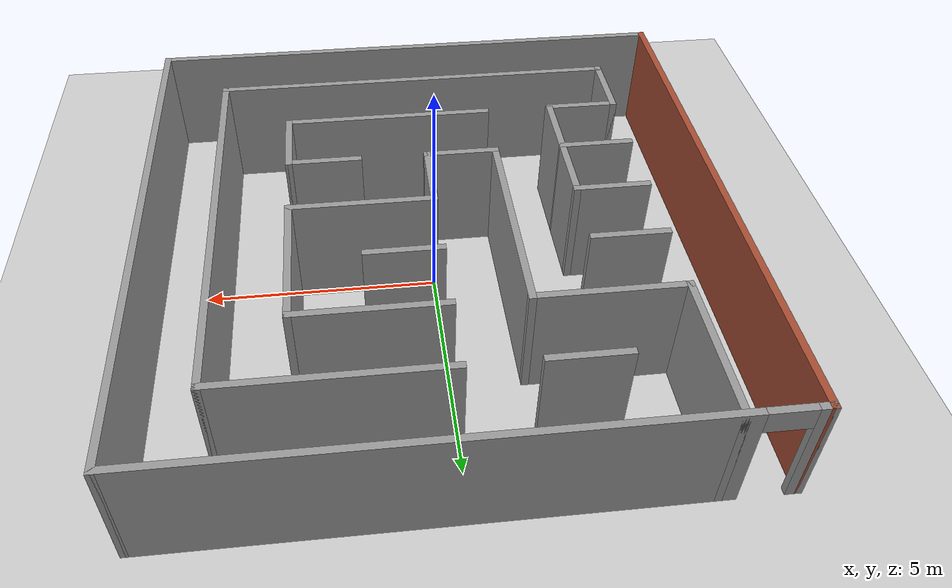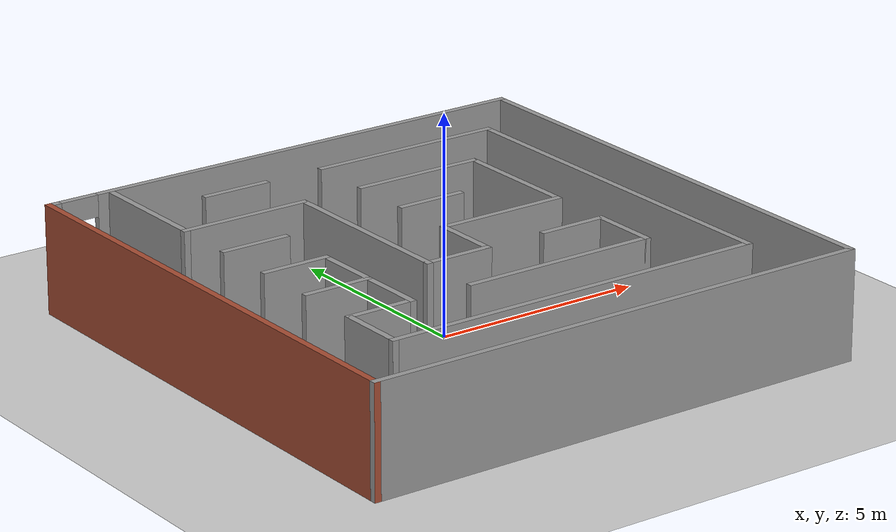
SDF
<?xml version="1.0" ?>
<sdf version="1.5">
  <world name="default">
    <!-- A global light source -->
    <include>
      <uri>model://sun</uri>
    </include>

    <!-- A ground plane -->
    <include>
      <uri>model://ground_plane</uri>
    </include>

    <!-- A maze -->
    <include>
      <uri>model://maze12_1</uri>
      <name>maze1</name>
      <pose>0 0 0 0 0 0</pose>
    </include>

  </world>
</sdf>

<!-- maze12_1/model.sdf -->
<sdf version='1.6'>
  <model name='maze12_1'>
    <pose frame=''>0 0 0 0 -0 0</pose>
    <link name='Wall_0'>
      <collision name='Wall_0_Collision'>
        <geometry>
          <box>
            <size>12.15 0.15 2.5</size>
          </box>
        </geometry>
        <pose frame=''>0 0 1.25 0 -0 0</pose>
      </collision>
      <visual name='Wall_0_Visual'>
        <pose frame=''>0 0 1.25 0 -0 0</pose>
        <geometry>
          <box>
            <size>12.15 0.15 2.5</size>
          </box>
        </geometry>
        <material>
          <script>
            <uri>model://maze12_1/materials/scripts</uri>
            <uri>model://maze12_1/materials/textures</uri>
            <name>BricksTest</name>
          </script>
          <ambient>1 1 1 1</ambient>
        </material>
      </visual>
      <pose frame=''>-6 0 0 0 -0 1.5708</pose>
    </link>
    <link name='Wall_1'>
      <pose frame=''>0 6 0 0 -0 0</pose>
      <visual name='Wall_1_Visual_0'>
        <pose frame=''>-5.9077 0 1.25 0 -0 0</pose>
        <geometry>
          <box>
            <size>0.334593 0.15 2.5</size>
          </box>
        </geometry>
        <material>
          <script>
            <uri>file://media/materials/scripts/gazebo.material</uri>
            <name>Gazebo/Grey</name>
          </script>
          <ambient>1 1 1 1</ambient>
        </material>
      </visual>
      <collision name='Wall_1_Collision_0'>
        <geometry>
          <box>
            <size>0.334593 0.15 2.5</size>
          </box>
        </geometry>
        <pose frame=''>-5.9077 0 1.25 0 -0 0</pose>
      </collision>
      <visual name='Wall_1_Visual_1'>
        <pose frame=''>0.617297 0 1.25 0 -0 0</pose>
        <geometry>
          <box>
            <size>10.9154 0.15 2.5</size>
          </box>
        </geometry>
        <material>
          <script>
            <uri>file://media/materials/scripts/gazebo.material</uri>
            <name>Gazebo/Grey</name>
          </script>
          <ambient>1 1 1 1</ambient>
        </material>
      </visual>
      <collision name='Wall_1_Collision_1'>
        <geometry>
          <box>
            <size>10.9154 0.15 2.5</size>
          </box>
        </geometry>
        <pose frame=''>0.617297 0 1.25 0 -0 0</pose>
      </collision>
      <visual name='Wall_1_Visual_2'>
        <pose frame=''>-5.29041 0 2.25 0 -0 0</pose>
        <geometry>
          <box>
            <size>0.9 0.15 0.5</size>
          </box>
        </geometry>
        <material>
          <script>
            <uri>file://media/materials/scripts/gazebo.material</uri>
            <name>Gazebo/Grey</name>
          </script>
          <ambient>1 1 1 1</ambient>
        </material>
      </visual>
      <collision name='Wall_1_Collision_2'>
        <geometry>
          <box>
            <size>0.9 0.15 0.5</size>
          </box>
        </geometry>
        <pose frame=''>-5.29041 0 2.25 0 -0 0</pose>
      </collision>
    </link>
    <link name='Wall_2'>
      <collision name='Wall_2_Collision'>
        <geometry>
          <box>
            <size>12.15 0.15 2.5</size>
          </box>
        </geometry>
        <pose frame=''>0 0 1.25 0 -0 0</pose>
      </collision>
      <visual name='Wall_2_Visual'>
        <pose frame=''>0 0 1.25 0 -0 0</pose>
        <geometry>
          <box>
            <size>12.15 0.15 2.5</size>
          </box>
        </geometry>
        <material>
          <script>
            <uri>file://media/materials/scripts/gazebo.material</uri>
            <name>Gazebo/Grey</name>
          </script>
          <ambient>1 1 1 1</ambient>
        </material>
      </visual>
      <pose frame=''>6 0 0 0 0 -1.5708</pose>
    </link>
    <link name='Wall_26'>
      <collision name='Wall_26_Collision'>
        <geometry>
          <box>
            <size>3.15 0.15 2.5</size>
          </box>
        </geometry>
        <pose frame=''>0 0 1.25 0 -0 0</pose>
      </collision>
      <visual name='Wall_26_Visual'>
        <pose frame=''>0 0 1.25 0 -0 0</pose>
        <geometry>
          <box>
            <size>3.15 0.15 2.5</size>
          </box>
        </geometry>
        <material>
          <script>
            <uri>file://media/materials/scripts/gazebo.material</uri>
            <name>Gazebo/Grey</name>
          </script>
          <ambient>1 1 1 1</ambient>
        </material>
      </visual>
      <pose frame=''>1.5 0 0 0 -0 0</pose>
    </link>
    <link name='Wall_27'>
      <collision name='Wall_27_Collision'>
        <geometry>
          <box>
            <size>3.15 0.15 2.5</size>
          </box>
        </geometry>
        <pose frame=''>0 0 1.25 0 -0 0</pose>
      </collision>
      <visual name='Wall_27_Visual'>
        <pose frame=''>0 0 1.25 0 -0 0</pose>
        <geometry>
          <box>
            <size>3.15 0.15 2.5</size>
          </box>
        </geometry>
        <material>
          <script>
            <uri>file://media/materials/scripts/gazebo.material</uri>
            <name>Gazebo/Grey</name>
          </script>
          <ambient>1 1 1 1</ambient>
        </material>
      </visual>
      <pose frame=''>3 1.5 0 0 -0 1.5708</pose>
    </link>
    <link name='Wall_28'>
      <collision name='Wall_28_Collision'>
        <geometry>
          <box>
            <size>3.15 0.15 2.5</size>
          </box>
        </geometry>
        <pose frame=''>0 0 1.25 0 -0 0</pose>
      </collision>
      <visual name='Wall_28_Visual'>
        <pose frame=''>0 0 1.25 0 -0 0</pose>
        <geometry>
          <box>
            <size>3.15 0.15 2.5</size>
          </box>
        </geometry>
        <material>
          <script>
            <uri>file://media/materials/scripts/gazebo.material</uri>
            <name>Gazebo/Grey</name>
          </script>
          <ambient>1 1 1 1</ambient>
        </material>
      </visual>
      <pose frame=''>1.5 3 0 0 -0 3.14159</pose>
    </link>
    <link name='Wall_3'>
      <collision name='Wall_3_Collision'>
        <geometry>
          <box>
            <size>12.15 0.15 2.5</size>
          </box>
        </geometry>
        <pose frame=''>0 0 1.25 0 -0 0</pose>
      </collision>
      <visual name='Wall_3_Visual'>
        <pose frame=''>0 0 1.25 0 -0 0</pose>
        <geometry>
          <box>
            <size>12.15 0.15 2.5</size>
          </box>
        </geometry>
        <material>
          <script>
            <uri>file://media/materials/scripts/gazebo.material</uri>
            <name>Gazebo/Grey</name>
          </script>
          <ambient>1 1 1 1</ambient>
        </material>
      </visual>
      <pose frame=''>0 -6 0 0 -0 3.14159</pose>
    </link>
    <link name='Wall_30'>
      <collision name='Wall_30_Collision'>
        <geometry>
          <box>
            <size>4.65 0.15 2.5</size>
          </box>
        </geometry>
        <pose frame=''>0 0 1.25 0 -0 0</pose>
      </collision>
      <visual name='Wall_30_Visual'>
        <pose frame=''>0 0 1.25 0 -0 0</pose>
        <geometry>
          <box>
            <size>4.65 0.15 2.5</size>
          </box>
        </geometry>
        <material>
          <script>
            <uri>file://media/materials/scripts/gazebo.material</uri>
            <name>Gazebo/Grey</name>
          </script>
          <ambient>1 1 1 1</ambient>
        </material>
      </visual>
      <pose frame=''>2.25 4.5 0 0 -0 0</pose>
    </link>
    <link name='Wall_31'>
      <collision name='Wall_31_Collision'>
        <geometry>
          <box>
            <size>9.15 0.15 2.5</size>
          </box>
        </geometry>
        <pose frame=''>0 0 1.25 0 -0 0</pose>
      </collision>
      <visual name='Wall_31_Visual'>
        <pose frame=''>0 0 1.25 0 -0 0</pose>
        <geometry>
          <box>
            <size>9.15 0.15 2.5</size>
          </box>
        </geometry>
        <material>
          <script>
            <uri>file://media/materials/scripts/gazebo.material</uri>
            <name>Gazebo/Grey</name>
          </script>
          <ambient>1 1 1 1</ambient>
        </material>
      </visual>
      <pose frame=''>4.5 0 0 0 0 -1.5708</pose>
    </link>
    <link name='Wall_32'>
      <collision name='Wall_32_Collision'>
        <geometry>
          <box>
            <size>9.15 0.15 2.5</size>
          </box>
        </geometry>
        <pose frame=''>0 0 1.25 0 -0 0</pose>
      </collision>
      <visual name='Wall_32_Visual'>
        <pose frame=''>0 0 1.25 0 -0 0</pose>
        <geometry>
          <box>
            <size>9.15 0.15 2.5</size>
          </box>
        </geometry>
        <material>
          <script>
            <uri>file://media/materials/scripts/gazebo.material</uri>
            <name>Gazebo/Grey</name>
          </script>
          <ambient>1 1 1 1</ambient>
        </material>
      </visual>
      <pose frame=''>0 -4.5 0 0 -0 3.14159</pose>
    </link>
    <link name='Wall_33'>
      <collision name='Wall_33_Collision'>
        <geometry>
          <box>
            <size>1.65 0.15 2.5</size>
          </box>
        </geometry>
        <pose frame=''>0 0 1.25 0 -0 0</pose>
      </collision>
      <visual name='Wall_33_Visual'>
        <pose frame=''>0 0 1.25 0 -0 0</pose>
        <geometry>
          <box>
            <size>1.65 0.15 2.5</size>
          </box>
        </geometry>
        <material>
          <script>
            <uri>file://media/materials/scripts/gazebo.material</uri>
            <name>Gazebo/Grey</name>
          </script>
          <ambient>1 1 1 1</ambient>
        </material>
      </visual>
      <pose frame=''>-4.5 -3.75 0 0 -0 1.5708</pose>
    </link>
    <link name='Wall_34'>
      <collision name='Wall_34_Collision'>
        <geometry>
          <box>
            <size>1.65 0.15 2.5</size>
          </box>
        </geometry>
        <pose frame=''>0 0 1.25 0 -0 0</pose>
      </collision>
      <visual name='Wall_34_Visual'>
        <pose frame=''>0 0 1.25 0 -0 0</pose>
        <geometry>
          <box>
            <size>1.65 0.15 2.5</size>
          </box>
        </geometry>
        <material>
          <script>
            <uri>file://media/materials/scripts/gazebo.material</uri>
            <name>Gazebo/Grey</name>
          </script>
          <ambient>1 1 1 1</ambient>
        </material>
      </visual>
      <pose frame=''>-3.75 -3 0 0 -0 0</pose>
    </link>
    <link name='Wall_35'>
      <collision name='Wall_35_Collision'>
        <geometry>
          <box>
            <size>3.15 0.15 2.5</size>
          </box>
        </geometry>
        <pose frame=''>0 0 1.25 0 -0 0</pose>
      </collision>
      <visual name='Wall_35_Visual'>
        <pose frame=''>0 0 1.25 0 -0 0</pose>
        <geometry>
          <box>
            <size>3.15 0.15 2.5</size>
          </box>
        </geometry>
        <material>
          <script>
            <uri>file://media/materials/scripts/gazebo.material</uri>
            <name>Gazebo/Grey</name>
          </script>
          <ambient>1 1 1 1</ambient>
        </material>
      </visual>
      <pose frame=''>-3 -1.5 0 0 -0 1.5708</pose>
    </link>
    <link name='Wall_38'>
      <collision name='Wall_38_Collision'>
        <geometry>
          <box>
            <size>1.65 0.15 2.5</size>
          </box>
        </geometry>
        <pose frame=''>0 0 1.25 0 -0 0</pose>
      </collision>
      <visual name='Wall_38_Visual'>
        <pose frame=''>0 0 1.25 0 -0 0</pose>
        <geometry>
          <box>
            <size>1.65 0.15 2.5</size>
          </box>
        </geometry>
        <material>
          <script>
            <uri>file://media/materials/scripts/gazebo.material</uri>
            <name>Gazebo/Grey</name>
          </script>
          <ambient>1 1 1 1</ambient>
        </material>
      </visual>
      <pose frame=''>0 -0.75 0 0 0 -1.5708</pose>
    </link>
    <link name='Wall_39'>
      <collision name='Wall_39_Collision'>
        <geometry>
          <box>
            <size>1.65 0.15 2.5</size>
          </box>
        </geometry>
        <pose frame=''>0 0 1.25 0 -0 0</pose>
      </collision>
      <visual name='Wall_39_Visual'>
        <pose frame=''>0 0 1.25 0 -0 0</pose>
        <geometry>
          <box>
            <size>1.65 0.15 2.5</size>
          </box>
        </geometry>
        <material>
          <script>
            <uri>file://media/materials/scripts/gazebo.material</uri>
            <name>Gazebo/Grey</name>
          </script>
          <ambient>1 1 1 1</ambient>
        </material>
      </visual>
      <pose frame=''>-0.75 -1.5 0 0 -0 3.14159</pose>
    </link>
    <link name='Wall_40'>
      <collision name='Wall_40_Collision'>
        <geometry>
          <box>
            <size>4.65 0.15 2.5</size>
          </box>
        </geometry>
        <pose frame=''>0 0 1.25 0 -0 0</pose>
      </collision>
      <visual name='Wall_40_Visual'>
        <pose frame=''>0 0 1.25 0 -0 0</pose>
        <geometry>
          <box>
            <size>4.65 0.15 2.5</size>
          </box>
        </geometry>
        <material>
          <script>
            <uri>file://media/materials/scripts/gazebo.material</uri>
            <name>Gazebo/Grey</name>
          </script>
          <ambient>1 1 1 1</ambient>
        </material>
      </visual>
      <pose frame=''>-1.5 0.75 0 0 -0 1.5708</pose>
    </link>
    <link name='Wall_41'>
      <collision name='Wall_41_Collision'>
        <geometry>
          <box>
            <size>3.15 0.15 2.5</size>
          </box>
        </geometry>
        <pose frame=''>0 0 1.25 0 -0 0</pose>
      </collision>
      <visual name='Wall_41_Visual'>
        <pose frame=''>0 0 1.25 0 -0 0</pose>
        <geometry>
          <box>
            <size>3.15 0.15 2.5</size>
          </box>
        </geometry>
        <material>
          <script>
            <uri>file://media/materials/scripts/gazebo.material</uri>
            <name>Gazebo/Grey</name>
          </script>
          <ambient>1 1 1 1</ambient>
        </material>
      </visual>
      <pose frame=''>-3 3 0 0 -0 3.14159</pose>
    </link>
    <link name='Wall_42'>
      <collision name='Wall_42_Collision'>
        <geometry>
          <box>
            <size>3.15 0.15 2.5</size>
          </box>
        </geometry>
        <pose frame=''>0 0 1.25 0 -0 0</pose>
      </collision>
      <visual name='Wall_42_Visual'>
        <pose frame=''>0 0 1.25 0 -0 0</pose>
        <geometry>
          <box>
            <size>3.15 0.15 2.5</size>
          </box>
        </geometry>
        <material>
          <script>
            <uri>file://media/materials/scripts/gazebo.material</uri>
            <name>Gazebo/Grey</name>
          </script>
          <ambient>1 1 1 1</ambient>
        </material>
      </visual>
      <pose frame=''>-4.5 4.5 0 0 -0 1.5708</pose>
    </link>
    <link name='Wall_53'>
      <collision name='Wall_53_Collision'>
        <geometry>
          <box>
            <size>1.65 0.15 2.5</size>
          </box>
        </geometry>
        <pose frame=''>0 0 1.25 0 -0 0</pose>
      </collision>
      <visual name='Wall_53_Visual'>
        <pose frame=''>0 0 1.25 0 -0 0</pose>
        <geometry>
          <box>
            <size>1.65 0.15 2.5</size>
          </box>
        </geometry>
        <material>
          <script>
            <uri>file://media/materials/scripts/gazebo.material</uri>
            <name>Gazebo/Grey</name>
          </script>
          <ambient>1 1 1 1</ambient>
        </material>
      </visual>
      <pose frame=''>-3.75 -1.5 0 0 -0 3.14159</pose>
    </link>
    <link name='Wall_59'>
      <collision name='Wall_59_Collision'>
        <geometry>
          <box>
            <size>1.65 0.15 2.5</size>
          </box>
        </geometry>
        <pose frame=''>0 0 1.25 0 -0 0</pose>
      </collision>
      <visual name='Wall_59_Visual'>
        <pose frame=''>0 0 1.25 0 -0 0</pose>
        <geometry>
          <box>
            <size>1.65 0.15 2.5</size>
          </box>
        </geometry>
        <material>
          <script>
            <uri>file://media/materials/scripts/gazebo.material</uri>
            <name>Gazebo/Grey</name>
          </script>
          <ambient>1 1 1 1</ambient>
        </material>
      </visual>
      <pose frame=''>-3.75 0 0 0 -0 3.14159</pose>
    </link>
    <link name='Wall_61'>
      <collision name='Wall_61_Collision'>
        <geometry>
          <box>
            <size>1.65 0.15 2.5</size>
          </box>
        </geometry>
        <pose frame=''>0 0 1.25 0 -0 0</pose>
      </collision>
      <visual name='Wall_61_Visual'>
        <pose frame=''>0 0 1.25 0 -0 0</pose>
        <geometry>
          <box>
            <size>1.65 0.15 2.5</size>
          </box>
        </geometry>
        <material>
          <script>
            <uri>file://media/materials/scripts/gazebo.material</uri>
            <name>Gazebo/Grey</name>
          </script>
          <ambient>1 1 1 1</ambient>
        </material>
      </visual>
      <pose frame=''>-3.75 1.5 0 0 -0 0</pose>
    </link>
    <link name='Wall_63'>
      <collision name='Wall_63_Collision'>
        <geometry>
          <box>
            <size>1.65 0.15 2.5</size>
          </box>
        </geometry>
        <pose frame=''>0 0 1.25 0 -0 0</pose>
      </collision>
      <visual name='Wall_63_Visual'>
        <pose frame=''>0 0 1.25 0 -0 0</pose>
        <geometry>
          <box>
            <size>1.65 0.15 2.5</size>
          </box>
        </geometry>
        <material>
          <script>
            <uri>file://media/materials/scripts/gazebo.material</uri>
            <name>Gazebo/Grey</name>
          </script>
          <ambient>1 1 1 1</ambient>
        </material>
      </visual>
      <pose frame=''>2.25 -1.5 0 0 -0 0</pose>
    </link>
    <link name='Wall_64'>
      <collision name='Wall_64_Collision'>
        <geometry>
          <box>
            <size>1.65 0.15 2.5</size>
          </box>
        </geometry>
        <pose frame=''>0 0 1.25 0 -0 0</pose>
      </collision>
      <visual name='Wall_64_Visual'>
        <pose frame=''>0 0 1.25 0 -0 0</pose>
        <geometry>
          <box>
            <size>1.65 0.15 2.5</size>
          </box>
        </geometry>
        <material>
          <script>
            <uri>file://media/materials/scripts/gazebo.material</uri>
            <name>Gazebo/Grey</name>
          </script>
          <ambient>1 1 1 1</ambient>
        </material>
      </visual>
      <pose frame=''>3 -2.25 0 0 0 -1.5708</pose>
    </link>
    <link name='Wall_65'>
      <collision name='Wall_65_Collision'>
        <geometry>
          <box>
            <size>4.65 0.15 2.5</size>
          </box>
        </geometry>
        <pose frame=''>0 0 1.25 0 -0 0</pose>
      </collision>
      <visual name='Wall_65_Visual'>
        <pose frame=''>0 0 1.25 0 -0 0</pose>
        <geometry>
          <box>
            <size>4.65 0.15 2.5</size>
          </box>
        </geometry>
        <material>
          <script>
            <uri>file://media/materials/scripts/gazebo.material</uri>
            <name>Gazebo/Grey</name>
          </script>
          <ambient>1 1 1 1</ambient>
        </material>
      </visual>
      <pose frame=''>0.75 -3 0 0 -0 3.14159</pose>
    </link>
    <link name='Wall_67'>
      <collision name='Wall_67_Collision'>
        <geometry>
          <box>
            <size>1.65 0.15 2.5</size>
          </box>
        </geometry>
        <pose frame=''>0 0 1.25 0 -0 0</pose>
      </collision>
      <visual name='Wall_67_Visual'>
        <pose frame=''>0 0 1.25 0 -0 0</pose>
        <geometry>
          <box>
            <size>1.65 0.15 2.5</size>
          </box>
        </geometry>
        <material>
          <script>
            <uri>file://media/materials/scripts/gazebo.material</uri>
            <name>Gazebo/Grey</name>
          </script>
          <ambient>1 1 1 1</ambient>
        </material>
      </visual>
      <pose frame=''>-2.25 4.5 0 0 -0 0</pose>
    </link>
    <link name='Wall_69'>
      <collision name='Wall_69_Collision'>
        <geometry>
          <box>
            <size>1.65 0.15 2.5</size>
          </box>
        </geometry>
        <pose frame=''>0 0 1.25 0 -0 0</pose>
      </collision>
      <visual name='Wall_69_Visual'>
        <pose frame=''>0 0 1.25 0 -0 0</pose>
        <geometry>
          <box>
            <size>1.65 0.15 2.5</size>
          </box>
        </geometry>
        <material>
          <script>
            <uri>file://media/materials/scripts/gazebo.material</uri>
            <name>Gazebo/Grey</name>
          </script>
          <ambient>1 1 1 1</ambient>
        </material>
      </visual>
      <pose frame=''>0.75 1.5 0 0 -0 0</pose>
    </link>
    <static>1</static>
  </model>
</sdf>
